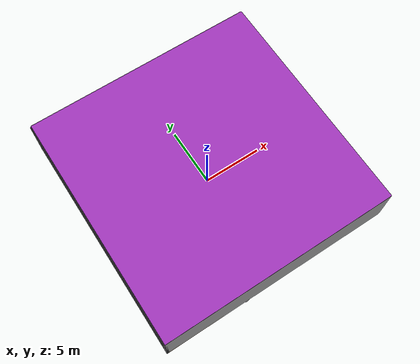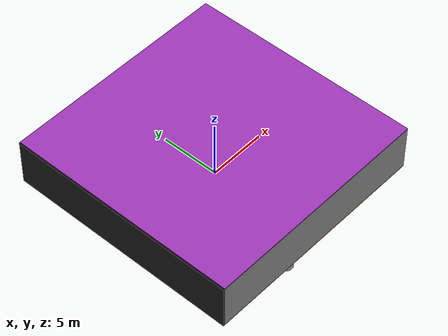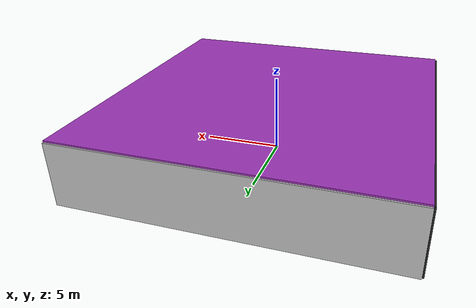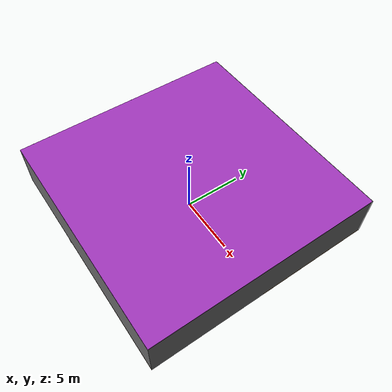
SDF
<sdf version="1.4">
 <world name="default">
  <physics type="ode">
   <max_step_size>0.001</max_step_size>
   <real_time_factor>1</real_time_factor>
   <real_time_update_rate>1000</real_time_update_rate>
   <gravity>0 0 -9.8</gravity>
  </physics>
  <scene><ambient>0.4 0.4 0.4 1</ambient><background>0.7 0.7 0.7 1</background><shadows>1</shadows></scene>
  <model name="Surrounding">
   <static>1</static>
   <link name="Ceiling">
    <collision name="Ceiling_Collision"><geometry><box><size>20 20 0.1</size></box></geometry></collision>
    <visual name="Ceiling_Visual">
     <geometry><box><size>20 20 0.1</size></box></geometry>
     <material>
      <script><uri>file://media/materials/scripts/gazebo.material</uri><name>Gazebo/Purple</name></script>
     </material>
    </visual>
    <pose>0 0 4.05 0 0 0</pose>
   </link>
   <link name="Wall_South">
    <collision name="Wall_South_Collision">
     <geometry><box><size>20 0 4</size></box></geometry>
     <pose>0 0 2 0 -0 0</pose>
    </collision>
    <visual name="Wall_South_Visual">
     <pose>0 0 2 0 -0 0</pose>
     <geometry><box><size>20 0 4</size></box></geometry>
     <material>
      <script><uri>file://media/materials/scripts/gazebo.material</uri><name>Gazebo/Grey</name></script>
     </material>
    </visual>
    <velocity_decay><linear>0</linear><angular>0</angular></velocity_decay>
    <pose>0 -10 0 0 -0 0</pose>
   </link>
   <link name="Wall_East">
    <collision name="Wall_21_Collision">
     <geometry><box><size>20 0 4</size></box></geometry>
     <pose>0 0 2 0 -0 0</pose>
    </collision>
    <visual name="Wall_21_Visual">
     <pose>0 0 2 0 -0 0</pose>
     <geometry><box><size>20 0 4</size></box></geometry>
     <material>
      <script><uri>file://media/materials/scripts/gazebo.material</uri><name>Gazebo/DarkGrey</name></script>
     </material>
    </visual>
    <velocity_decay><linear>0</linear><angular>0</angular></velocity_decay>
    <pose>10 0 0 0 -0 1.5708</pose>
   </link>
   <link name="Wall_North">
    <collision name="Wall_22_Collision">
     <geometry><box><size>20 0.2 4</size></box></geometry>
     <pose>0 0 2 0 -0 0</pose>
    </collision>
    <visual name="Wall_22_Visual">
     <pose>0 0 2 0 -0 0</pose>
     <geometry><box><size>20 0.2 4</size></box></geometry>
     <material>
      <script><uri>file://media/materials/scripts/gazebo.material</uri><name>Gazebo/LightOff</name></script>
     </material>
    </visual>
    <velocity_decay><linear>0</linear><angular>0</angular></velocity_decay>
    <pose>0 10 0 0 -0 0</pose>
   </link>
   <link name="Wall_West">
    <collision name="Wall_23_Collision">
     <geometry><box><size>20 0.2 4</size></box></geometry>
     <pose>0 0 2 0 -0 0</pose>
    </collision>
    <visual name="Wall_23_Visual">
     <pose>0 0 2 0 -0 0</pose>
     <geometry><box><size>20 0.2 4</size></box></geometry>
     <material>
      <script><uri>file://media/materials/scripts/gazebo.material</uri><name>Gazebo/FlatBlack</name></script>
     </material>
    </visual>
    <velocity_decay><linear>0</linear><angular>0</angular></velocity_decay>
    <pose>-10 0 0 0 0 -1.5708</pose>
   </link>
   <link name="Ground_link">
    <collision name="collision">
     <pose>0 0 .05 0 -0 0</pose>
     <geometry><box><size>20 20 0.1</size></box></geometry>
    </collision>
    <visual name="visual">
     <pose>0 0 .05 0 -0 0</pose>
     <geometry><box><size>20 20 0.1</size></box></geometry>
     <material>
      <script>
       <uri>file://media/materials/scripts/gazebo.material</uri>
       <name>Gazebo/OrangeTransparent</name>
      </script>
     </material>
    </visual>
   </link>
   <static>1</static>
  </model>
  <spherical_coordinates>
   <surface_model>EARTH_WGS84</surface_model>
   <latitude_deg>0</latitude_deg>
   <longitude_deg>0</longitude_deg>
   <elevation>0</elevation>
   <heading_deg>0</heading_deg>
  </spherical_coordinates>
  <light name="lightball_0" type="diffuse">
   <diffuse>0.8 0.8 0.8 1</diffuse>
   <specular>0.2 0.2 0.2 1</specular>
   <attenuation>
    <range>100</range>
    <constant>0.7</constant>
    <linear>0.01</linear>
    <quadratic>0.001</quadratic>
   </attenuation>
   <direction>-0.5 0.1 -0.9</direction>
   <pose>8.60953897345 -2.35314577959 2.38411566913 0 0 0</pose>
  </light>
  <light name="lightball_1" type="diffuse">
   <diffuse>0.8 0.8 0.8 1</diffuse>
   <specular>0.2 0.2 0.2 1</specular>
   <attenuation>
    <range>100</range>
    <constant>0.7</constant>
    <linear>0.01</linear>
    <quadratic>0.001</quadratic>
   </attenuation>
   <direction>-0.5 0.1 -0.9</direction>
   <pose>-4.4537020642 3.50973981624 3.26961393363 0 0 0</pose>
  </light>
  <light name="lightball_2" type="diffuse">
   <diffuse>0.8 0.8 0.8 1</diffuse>
   <specular>0.2 0.2 0.2 1</specular>
   <attenuation>
    <range>100</range>
    <constant>0.7</constant>
    <linear>0.01</linear>
    <quadratic>0.001</quadratic>
   </attenuation>
   <direction>-0.5 0.1 -0.9</direction>
   <pose>-6.36457431494 4.52447381174 1.93666159656 0 0 0</pose>
  </light>
  <light name="lightball_3" type="diffuse">
   <diffuse>0.8 0.8 0.8 1</diffuse>
   <specular>0.2 0.2 0.2 1</specular>
   <attenuation>
    <range>100</range>
    <constant>0.7</constant>
    <linear>0.01</linear>
    <quadratic>0.001</quadratic>
   </attenuation>
   <direction>-0.5 0.1 -0.9</direction>
   <pose>-7.7116228801 -6.72645657716 2.81317829032 0 0 0</pose>
  </light>
  <light name="lightball_4" type="diffuse">
   <diffuse>0.8 0.8 0.8 1</diffuse>
   <specular>0.2 0.2 0.2 1</specular>
   <attenuation>
    <range>100</range>
    <constant>0.7</constant>
    <linear>0.01</linear>
    <quadratic>0.001</quadratic>
   </attenuation>
   <direction>-0.5 0.1 -0.9</direction>
   <pose>5.82433005615 5.55339801484 2.13117490185 0 0 0</pose>
  </light>
  <light name="lightball_5" type="diffuse">
   <diffuse>0.8 0.8 0.8 1</diffuse>
   <specular>0.2 0.2 0.2 1</specular>
   <attenuation>
    <range>100</range>
    <constant>0.7</constant>
    <linear>0.01</linear>
    <quadratic>0.001</quadratic>
   </attenuation>
   <direction>-0.5 0.1 -0.9</direction>
   <pose>-9.74011068151 -3.84890265799 2.53465273116 0 0 0</pose>
  </light>
  <light name="lightball_6" type="diffuse">
   <diffuse>0.8 0.8 0.8 1</diffuse>
   <specular>0.2 0.2 0.2 1</specular>
   <attenuation>
    <range>100</range>
    <constant>0.7</constant>
    <linear>0.01</linear>
    <quadratic>0.001</quadratic>
   </attenuation>
   <direction>-0.5 0.1 -0.9</direction>
   <pose>4.10220476749 8.30644140659 0.830806645103 0 0 0</pose>
  </light>
  <light name="lightball_7" type="diffuse">
   <diffuse>0.8 0.8 0.8 1</diffuse>
   <specular>0.2 0.2 0.2 1</specular>
   <attenuation>
    <range>100</range>
    <constant>0.7</constant>
    <linear>0.01</linear>
    <quadratic>0.001</quadratic>
   </attenuation>
   <direction>-0.5 0.1 -0.9</direction>
   <pose>1.73333746684 -2.07715771015 2.75104232859 0 0 0</pose>
  </light>
  <light name="lightball_8" type="diffuse">
   <diffuse>0.8 0.8 0.8 1</diffuse>
   <specular>0.2 0.2 0.2 1</specular>
   <attenuation>
    <range>100</range>
    <constant>0.7</constant>
    <linear>0.01</linear>
    <quadratic>0.001</quadratic>
   </attenuation>
   <direction>-0.5 0.1 -0.9</direction>
   <pose>-4.81972838206 1.38941080863 0.94805548473 0 0 0</pose>
  </light>
  <light name="lightball_9" type="diffuse">
   <diffuse>0.8 0.8 0.8 1</diffuse>
   <specular>0.2 0.2 0.2 1</specular>
   <attenuation>
    <range>100</range>
    <constant>0.7</constant>
    <linear>0.01</linear>
    <quadratic>0.001</quadratic>
   </attenuation>
   <direction>-0.5 0.1 -0.9</direction>
   <pose>-5.48615876222 9.66067001831 1.68747250848 0 0 0</pose>
  </light>
  <light name="lightball_10" type="diffuse">
   <diffuse>0.8 0.8 0.8 1</diffuse>
   <specular>0.2 0.2 0.2 1</specular>
   <attenuation>
    <range>100</range>
    <constant>0.7</constant>
    <linear>0.01</linear>
    <quadratic>0.001</quadratic>
   </attenuation>
   <direction>-0.5 0.1 -0.9</direction>
   <pose>5.6077503267 -2.26051070574 3.29204501104 0 0 0</pose>
  </light>
  <light name="lightball_11" type="diffuse">
   <diffuse>0.8 0.8 0.8 1</diffuse>
   <specular>0.2 0.2 0.2 1</specular>
   <attenuation>
    <range>100</range>
    <constant>0.7</constant>
    <linear>0.01</linear>
    <quadratic>0.001</quadratic>
   </attenuation>
   <direction>-0.5 0.1 -0.9</direction>
   <pose>7.21423521639 -3.45025307655 1.34569068864 0 0 0</pose>
  </light>
  <light name="lightball_12" type="diffuse">
   <diffuse>0.8 0.8 0.8 1</diffuse>
   <specular>0.2 0.2 0.2 1</specular>
   <attenuation>
    <range>100</range>
    <constant>0.7</constant>
    <linear>0.01</linear>
    <quadratic>0.001</quadratic>
   </attenuation>
   <direction>-0.5 0.1 -0.9</direction>
   <pose>-4.37799726841 -4.93112328306 3.26657978813 0 0 0</pose>
  </light>
  <include><uri>model://cabinet</uri><pose>-7.31665358838 -3.54874842515 0 0 0 2.16069065663</pose></include>
  <include>
   <uri>model://construction_cone</uri>
   <pose>-6.84572799952 -0.555275677362 0 0 0 0.80765226653</pose>
  </include>
  <include>
   <uri>model://construction_cone</uri>
   <pose>-8.44402856839 3.34254424827 0 0 0 2.31375509474</pose>
  </include>
  <include><uri>model://table</uri><pose>-6.87950917816 6.31483145443 0 0 0 0.706076926898</pose></include>
  <include><uri>model://table</uri><pose>-5.67409138692 -5.6857332343 0 0 0 1.91287211</pose></include>
  <include>
   <uri>model://textured_shapes</uri>
   <pose>-2.65800703427 -7.98969092955 0 0 0 3.05525356599</pose>
  </include>
  <include><uri>model://cabinet</uri><pose>0.375631349672 -7.16787013577 0 0 0 0.686688758819</pose></include>
  <include><uri>model://cabinet</uri><pose>1.2980933701 -0.933146181986 0 0 0 1.73762690738</pose></include>
  <include><uri>model://table</uri><pose>7.3478937881 -7.96909313488 0 0 0 1.55643386712</pose></include>
  <include>
   <uri>model://construction_cone</uri>
   <pose>6.32574155322 4.92813397939 0 0 0 0.811636675727</pose>
  </include>
 </world>
</sdf>

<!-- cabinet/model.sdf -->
<sdf version="1.5">
  <model name="cabinet">
    <static>true</static>
    <link name="cabinet_bottom_plate">
      <inertial>
        <pose>0 0 -1 0 0 0</pose>
        <inertia>
          <ixx>2.050000</ixx>
          <ixy>0</ixy>
          <ixz>0</ixz>
          <iyy>2.050000</iyy>
          <iyz>0</iyz>
          <izz>2.050000</izz>
        </inertia>
        <mass>25.000000</mass>
      </inertial>
      <collision name="cabinet_bottom_plate_geom">
        <pose>0 0 0.010000 0 0 0</pose>
        <geometry>
          <box>
            <size>0.450000 0.450000 0.020000</size>
          </box>
        </geometry>
      </collision>
      <visual name="cabinet_bottom_plate_geom_visual">
        <pose>0 0 0.010000 0 0 0</pose>
        <geometry>
          <box>
            <size>0.450000 0.450000 0.020000</size>
          </box>
        </geometry>
        <material>
          <script>
            <uri>model://media/materials/scripts/gazebo.material</uri>
            <name>Gazebo/Wood</name>
          </script>
        </material>
      </visual>
      <collision name="cabinet_bottom_plate_geom_cabinet_back_plate">
        <pose>0.235000 0 0.510000 0 0 0</pose>
        <geometry>
          <box>
            <size>0.020000 0.450000 1.020000</size>
          </box>
        </geometry>
      </collision>
      <visual name="cabinet_bottom_plate_geom_cabinet_back_plate_visual">
        <pose>0.235000 0 0.510000 0 0 0</pose>
        <geometry>
          <box>
            <size>0.020000 0.450000 1.020000</size>
          </box>
        </geometry>
        <material>
          <script>
            <uri>model://media/materials/scripts/gazebo.material</uri>
            <name>Gazebo/Wood</name>
          </script>
        </material>
      </visual>
      <collision name="cabinet_bottom_plate_geom_cabinet_left_plate">
        <pose>0 0.235000 0.510000 0 0 0</pose>
        <geometry>
          <box>
            <size>0.450000 0.020000 1.020000</size>
          </box>
        </geometry>
      </collision>
      <visual name="cabinet_bottom_plate_geom_cabinet_left_plate_visual">
        <pose>0 0.235000 0.510000 0 0 0</pose>
        <geometry>
          <box>
            <size>0.450000 0.020000 1.020000</size>
          </box>
        </geometry>
        <material>
          <script>
            <uri>model://media/materials/scripts/gazebo.material</uri>
            <name>Gazebo/Wood</name>
          </script>
        </material>
      </visual>
      <collision name="cabinet_bottom_plate_geom_cabinet_middle_plate">
        <pose>0 0 0.510000 0 0 0</pose>
        <geometry>
          <box>
            <size>0.450000 0.450000 0.020000</size>
          </box>
        </geometry>
      </collision>
      <visual name="cabinet_bottom_plate_geom_cabinet_middle_plate_visual">
        <pose>0 0 0.510000 0 0 0</pose>
        <geometry>
          <box>
            <size>0.450000 0.450000 0.020000</size>
          </box>
        </geometry>
        <material>
          <script>
            <uri>model://media/materials/scripts/gazebo.material</uri>
            <name>Gazebo/Wood</name>
          </script>
        </material>
      </visual>
      <collision name="cabinet_bottom_plate_geom_cabinet_right_plate">
        <pose>0 -0.235000 0.510000 0 0 0</pose>
        <geometry>
          <box>
            <size>0.450000 0.020000 1.020000</size>
          </box>
        </geometry>
      </collision>
      <visual name="cabinet_bottom_plate_geom_cabinet_right_plate_visual">
        <pose>0 -0.235000 0.510000 0 0 0</pose>
        <geometry>
          <box>
            <size>0.450000 0.020000 1.020000</size>
          </box>
        </geometry>
        <material>
          <script>
            <uri>model://media/materials/scripts/gazebo.material</uri>
            <name>Gazebo/Wood</name>
          </script>
        </material>
      </visual>
      <collision name="cabinet_bottom_plate_geom_cabinet_top_plate">
        <pose>0 0 1.010000 0 0 0</pose>
        <geometry>
          <box>
            <size>0.450000 0.450000 0.020000</size>
          </box>
        </geometry>
      </collision>
      <visual name="cabinet_bottom_plate_geom_cabinet_top_plate_visual">
        <pose>0 0 1.010000 0 0 0</pose>
        <geometry>
          <box>
            <size>0.450000 0.450000 0.020000</size>
          </box>
        </geometry>
        <material>
          <script>
            <uri>model://media/materials/scripts/gazebo.material</uri>
            <name>Gazebo/Wood</name>
          </script>
        </material>
      </visual>
    </link>
  </model>
</sdf>

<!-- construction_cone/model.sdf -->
<sdf version="1.5">
  <model name="Construction Cone">
    <link name="link">
      <collision name="collision">
        <geometry>
          <mesh>
            <scale>10 10 10</scale>
            <uri>file://isr-testbed/construction_cone/meshes/construction_cone.dae</uri>
          </mesh>
        </geometry>
      </collision>
      <visual name="visual">
        <geometry>
          <mesh>
            <scale>10 10 10</scale>
            <uri>file://isr-testbed/construction_cone/meshes/construction_cone.dae</uri>
          </mesh>
        </geometry>
      </visual>
    </link>
  </model>
</sdf>

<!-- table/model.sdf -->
<sdf version="1.5">
  <model name="table">
    <static>true</static>
    <link name="link">
      <collision name="surface">
        <pose>0 0 1.0 0 0 0</pose>
        <geometry>
          <box>
            <size>1.5 0.8 0.03</size>
          </box>
        </geometry>
        <surface>
          <friction>
            <ode>
              <mu>0.6</mu>
              <mu2>0.6</mu2>
            </ode>
          </friction>
        </surface>
      </collision>
      <visual name="visual1">
        <pose>0 0 1.0 0 0 0</pose>
        <geometry>
          <box>
            <size>1.5 0.8 0.03</size>
          </box>
        </geometry>
        <material>
          <script>
            <uri>model://media/materials/scripts/gazebo.material</uri>
            <name>Gazebo/Wood</name>
          </script>
        </material>
      </visual>
      <collision name="front_left_leg">
        <pose>0.68 0.38 0.5 0 0 0</pose>
        <geometry>
          <cylinder>
            <radius>0.02</radius>
            <length>1.0</length>
          </cylinder>
        </geometry>
      </collision>
      <visual name="front_left_leg">
        <pose>0.68 0.38 0.5 0 0 0</pose>
        <geometry>
          <cylinder>
            <radius>0.02</radius>
            <length>1.0</length>
          </cylinder>
        </geometry>
        <material>
          <script>
            <uri>model://media/materials/scripts/gazebo.material</uri>
            <name>Gazebo/Grey</name>
          </script>
        </material>
      </visual>
      <collision name="front_right_leg">
        <pose>0.68 -0.38 0.5 0 0 0</pose>
        <geometry>
          <cylinder>
            <radius>0.02</radius>
            <length>1.0</length>
          </cylinder>
        </geometry>
      </collision>
      <visual name="front_right_leg">
        <pose>0.68 -0.38 0.5 0 0 0</pose>
        <geometry>
          <cylinder>
            <radius>0.02</radius>
            <length>1.0</length>
          </cylinder>
        </geometry>
        <material>
          <script>
            <uri>model://media/materials/scripts/gazebo.material</uri>
            <name>Gazebo/Grey</name>
          </script>
        </material>
      </visual>
      <collision name="back_right_leg">
        <pose>-0.68 -0.38 0.5 0 0 0</pose>
        <geometry>
          <cylinder>
            <radius>0.02</radius>
            <length>1.0</length>
          </cylinder>
        </geometry>
      </collision>
      <visual name="back_right_leg">
        <pose>-0.68 -0.38 0.5 0 0 0</pose>
        <geometry>
          <cylinder>
            <radius>0.02</radius>
            <length>1.0</length>
          </cylinder>
        </geometry>
        <material>
          <script>
            <uri>model://media/materials/scripts/gazebo.material</uri>
            <name>Gazebo/Grey</name>
          </script>
        </material>
      </visual>
      <collision name="back_left_leg">
        <pose>-0.68 0.38 0.5 0 0 0</pose>
        <geometry>
          <cylinder>
            <radius>0.02</radius>
            <length>1.0</length>
          </cylinder>
        </geometry>
      </collision>
      <visual name="back_left_leg">
        <pose>-0.68 0.38 0.5 0 0 0</pose>
        <geometry>
          <cylinder>
            <radius>0.02</radius>
            <length>1.0</length>
          </cylinder>
        </geometry>
        <material>
          <script>
            <uri>model://media/materials/scripts/gazebo.material</uri>
            <name>Gazebo/Grey</name>
          </script>
        </material>
      </visual>
    </link>
  </model>
</sdf>

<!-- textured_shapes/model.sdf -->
<sdf version="1.6">
  <model name="textured_shapes">
    <pose>0 0 0.5 0 0 0</pose>
    <link name="box">
      <pose>0 -1.5 0 0 0 0</pose>
      <collision name="collision">
        <geometry>
          <box>
            <size>1 1 1</size>
          </box>
        </geometry>
      </collision>
      <visual name="visual">
        <geometry>
          <box>
            <size>1 1 1</size>
          </box>
        </geometry>
        <material>
          <script>
            <uri>model://../model_source/models/textured_shapes/materials/scripts</uri>
            <uri>model://../model_source/models/textured_shapes/materials/textures</uri>
            <name>TexturedShape/Squares</name>
          </script>
        </material>
      </visual>
    </link>
    <link name="sphere">
      <collision name="collision">
        <geometry>
          <sphere>
            <radius>0.5</radius>
          </sphere>
        </geometry>
      </collision>
      <visual name="visual">
        <geometry>
          <sphere>
            <radius>0.5</radius>
          </sphere>
        </geometry>
        <material>
          <script>
            <uri>model://../model_source/models/textured_shapes/materials/scripts</uri>
            <uri>model://../model_source/models/textured_shapes/materials/textures</uri>
            <name>TexturedShape/Squares</name>
          </script>
        </material>
      </visual>
    </link>
    <link name="cylinder">
      <pose>0 1.5 0 0 0 0</pose>
      <collision name="collision">
        <geometry>
          <cylinder>
            <radius>0.5</radius>
            <length>1</length>
          </cylinder>
        </geometry>
      </collision>
      <visual name="visual">
        <geometry>
          <cylinder>
            <radius>0.5</radius>
            <length>1</length>
          </cylinder>
        </geometry>
        <material>
          <script>
            <uri>model://../model_source/models/textured_shapes/materials/scripts</uri>
            <uri>model://../model_source/models/textured_shapes/materials/textures</uri>
            <name>TexturedShape/Squares</name>
          </script>
        </material>
      </visual>
    </link>
  </model>
</sdf>
